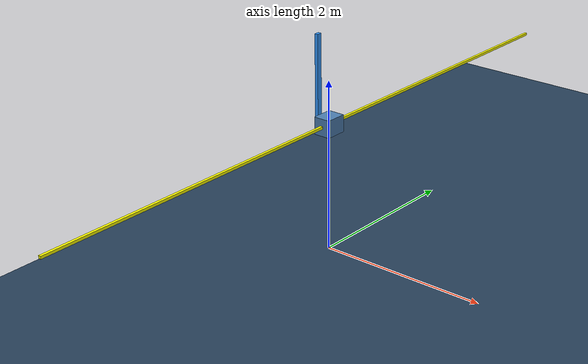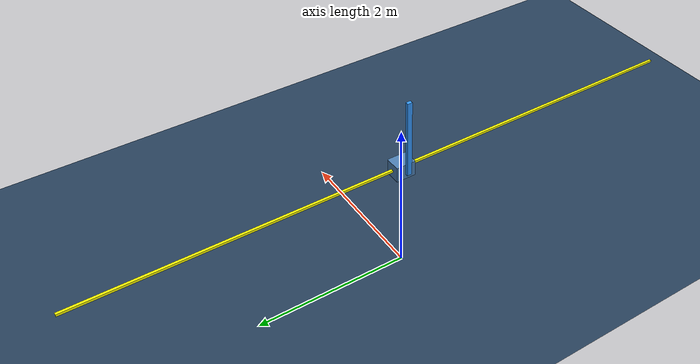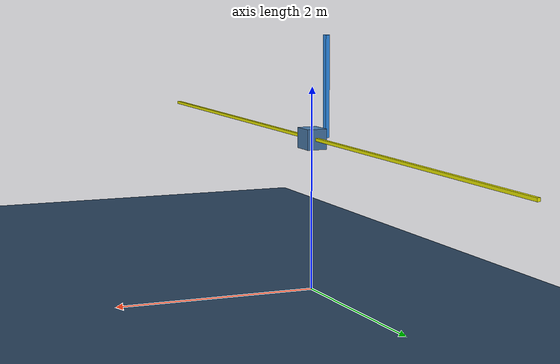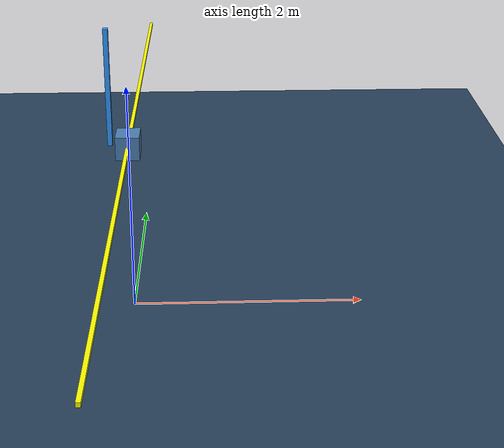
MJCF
<mujoco model="cartpole">
  <option timestep="0.001"/>

  <!-- 视觉设置 -->
<visual>
    <headlight diffuse="0.6 0.6 0.6" ambient="0.3 0.3 0.3" specular="0 0 0"/>
    <rgba haze="0.15 0.25 0.35 1"/>
    <global azimuth="-130" elevation="-20"/>
</visual>

  <!-- 材质定义 -->
  <asset>
    <material name="slider_mat" rgba="1 1 0 1"/>
    <material name="cart_mat" rgba="0.3 0.5 0.7 1"/>
    <material name="pole_mat" rgba="0.2 0.6 1 1"/>

    <texture type="skybox" builtin="gradient" rgb1="0.3 0.5 0.7" rgb2="0 0 0" width="512" height="3072"/>
    <texture type="2d" name="groundplane" builtin="checker" rgb1="0.2 0.3 0.4" rgb2="0.1 0.2 0.3" markrgb="0.1 0.2 0.3" width="300" height="300"/>
    <material name="groundplane" texture="groundplane" texuniform="true" texrepeat="1 1" reflectance="0.2"/>

  </asset>

  <!-- 世界环境 -->
  <worldbody>
    <!-- 天空光照 -->
    <light pos="0 0 1" dir="0 0 -1" directional="true"/>
    <!-- 地面 -->
    <geom name="floor" size="0 0 0.1" type="plane" material="groundplane"/>

    <camera name="side_view" mode="fixed" pos="0 0 1" xyaxes="0 -1 0 0 0 1" fovy="60"/>

    <!-- 滑轨（固定在地面上方1m处，长8m） -->
    <body name="slider" pos="0 0 1.5">
      <geom name="slider_geom" type="box" size="0.015 4 0.015" material="slider_mat"/>
      <!-- 滑轨是固定的，没有关节 -->
    </body>

    <!-- 小车（可沿滑轨移动） -->
    <body name="cart" pos="0 0 1.5">
      <!-- 滑动关节，限制在 -4m 到 4m 之间 -->
      <joint name="slider_to_cart" type="slide" axis="0 1 0" limited="true" range="-4 4" damping="0.00001"/>

      <!-- 小车尺寸：0.2×0.25×0.2（MuJoCo用半尺寸表示） -->
      <geom name="cart_geom" type="box" size="0.1 0.125 0.1" material="cart_mat"/>
      <inertial pos="0 0 0.05" mass="1" diaginertia="0.002 0.002 0.002"/>

      <!-- 杆子（作为小车的子物体，固定在小车上） -->
      <body name="pole" pos="-0.15 0 0">  <!-- 杆子下端固定在小车顶部 -->
        <!-- 铰链关节（旋转轴：X轴），使杆子可以自由摆动 -->
      <joint name="cart_to_pole" type="hinge" axis="1 0 0" limited="false" damping="0.00001" />

       <!-- 杆子尺寸：0.04×0.06×1.0（半尺寸：0.02×0.03×0.5） -->
        <!-- 由于杆子下端固定在铰链上，几何体需要偏移 0.5m（半长度） -->
        <geom name="pole_geom" type="box" size="0.02 0.03 0.5" pos="0 0 0.5" material="pole_mat"/>
        <!-- 惯性参数（质心在杆子中间） -->
        <inertial pos="0 0 0.5" mass="1" diaginertia="0.0836 0.0835 0.00043"/>
        <site name="pole_center" pos="0 0 0.5" size="0.01" type="sphere" rgba="1 0 0 0.5"/>
      </body>
    </body>
  </worldbody>

  <!-- 执行器（控制小车移动） -->
  <actuator>
    <motor name="slider_motor" joint="slider_to_cart" gear="1" ctrllimited="false" />
  </actuator>

<!-- 传感器 -->
  <sensor>
    <jointpos name="cart_position" joint="slider_to_cart"/>
    <jointvel name="cart_velocity" joint="slider_to_cart"/>
    <jointpos name="pole_angle" joint="cart_to_pole"/>
    <jointvel name="pole_velocity" joint="cart_to_pole"/>
    <accelerometer name="pole_accel" site="pole_center"/>
  </sensor>

</mujoco>
